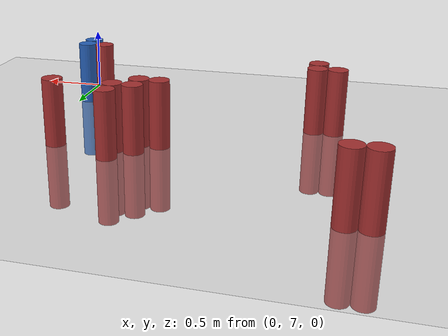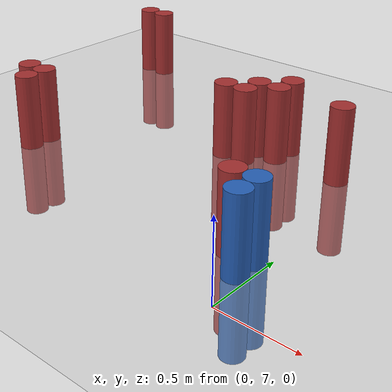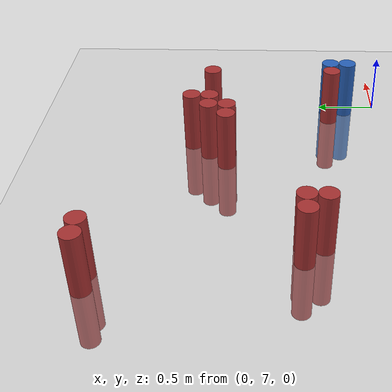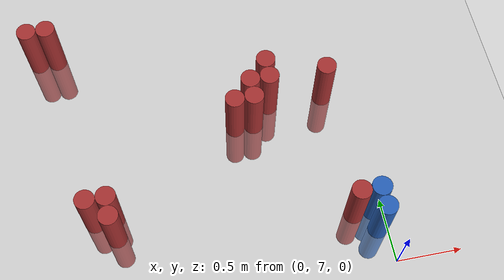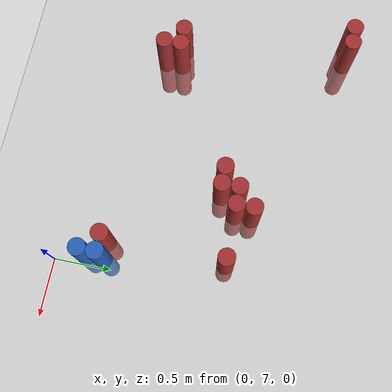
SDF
<sdf version="1.6">
 <world name="default">
  <model name="ground_plane">
   <static>1</static>
   <link name="link">
    <collision name="collision">
     <geometry><plane><normal>0 0 1</normal><size>100 100</size></plane></geometry>
     <surface><friction><ode><mu>100</mu><mu2>50</mu2></ode></friction></surface>
    </collision>
    <visual name="visual">
     <cast_shadows>0</cast_shadows>
     <geometry><plane><normal>0 0 1</normal><size>100 100</size></plane></geometry>
     <material>
      <script><uri>file://media/materials/scripts/gazebo.material</uri><name>Gazebo/Grey</name></script>
     </material>
    </visual>
   </link>
  </model>
  <model name="unit_cylinder_155">
   <static>1</static>
   <pose>-2.475000 9.225000 0.000000 0.000000 0.000000 0.000000</pose>
   <link name="link">
    <inertial>
     <mass>1</mass>
     <inertia><ixx>0.145833</ixx><ixy>0</ixy><ixz>0</ixz><iyy>0.145833</iyy><iyz>0</iyz><izz>0.125</izz></inertia>
    </inertial>
    <collision name="collision">
     <geometry><cylinder><radius>0.075000</radius><length>1</length></cylinder></geometry>
    </collision>
    <visual name="visual">
     <geometry><cylinder><radius>0.075000</radius><length>1</length></cylinder></geometry>
     <material>
      <ambient>0.648000 0.192000 0.192000 1</ambient>
      <diffuse>0.648000 0.192000 0.192000 1</diffuse>
     </material>
     <material>
      <script><name>Gazebo/Grey</name><uri>file://media/materials/scripts/gazebo.material</uri></script>
     </material>
    </visual>
   </link>
  </model>
  <model name="unit_cylinder_157">
   <static>1</static>
   <pose>-2.325000 9.225000 0.000000 0.000000 0.000000 0.000000</pose>
   <link name="link">
    <inertial>
     <mass>1</mass>
     <inertia><ixx>0.145833</ixx><ixy>0</ixy><ixz>0</ixz><iyy>0.145833</iyy><iyz>0</iyz><izz>0.125</izz></inertia>
    </inertial>
    <collision name="collision">
     <geometry><cylinder><radius>0.075000</radius><length>1</length></cylinder></geometry>
    </collision>
    <visual name="visual">
     <geometry><cylinder><radius>0.075000</radius><length>1</length></cylinder></geometry>
     <material>
      <ambient>0.648000 0.192000 0.192000 1</ambient>
      <diffuse>0.648000 0.192000 0.192000 1</diffuse>
     </material>
     <material>
      <script><name>Gazebo/Grey</name><uri>file://media/materials/scripts/gazebo.material</uri></script>
     </material>
    </visual>
   </link>
  </model>
  <model name="unit_cylinder_160">
   <static>1</static>
   <pose>-2.175000 7.725000 0.000000 0.000000 0.000000 0.000000</pose>
   <link name="link">
    <inertial>
     <mass>1</mass>
     <inertia><ixx>0.145833</ixx><ixy>0</ixy><ixz>0</ixz><iyy>0.145833</iyy><iyz>0</iyz><izz>0.125</izz></inertia>
    </inertial>
    <collision name="collision">
     <geometry><cylinder><radius>0.075000</radius><length>1</length></cylinder></geometry>
    </collision>
    <visual name="visual">
     <geometry><cylinder><radius>0.075000</radius><length>1</length></cylinder></geometry>
     <material>
      <ambient>0.648000 0.192000 0.192000 1</ambient>
      <diffuse>0.648000 0.192000 0.192000 1</diffuse>
     </material>
     <material>
      <script><name>Gazebo/Grey</name><uri>file://media/materials/scripts/gazebo.material</uri></script>
     </material>
    </visual>
   </link>
  </model>
  <model name="unit_cylinder_165">
   <static>1</static>
   <pose>-2.025000 7.575000 0.000000 0.000000 0.000000 0.000000</pose>
   <link name="link">
    <inertial>
     <mass>1</mass>
     <inertia><ixx>0.145833</ixx><ixy>0</ixy><ixz>0</ixz><iyy>0.145833</iyy><iyz>0</iyz><izz>0.125</izz></inertia>
    </inertial>
    <collision name="collision">
     <geometry><cylinder><radius>0.075000</radius><length>1</length></cylinder></geometry>
    </collision>
    <visual name="visual">
     <geometry><cylinder><radius>0.075000</radius><length>1</length></cylinder></geometry>
     <material>
      <ambient>0.648000 0.192000 0.192000 1</ambient>
      <diffuse>0.648000 0.192000 0.192000 1</diffuse>
     </material>
     <material>
      <script><name>Gazebo/Grey</name><uri>file://media/materials/scripts/gazebo.material</uri></script>
     </material>
    </visual>
   </link>
  </model>
  <model name="unit_cylinder_166">
   <static>1</static>
   <pose>-2.025000 7.725000 0.000000 0.000000 0.000000 0.000000</pose>
   <link name="link">
    <inertial>
     <mass>1</mass>
     <inertia><ixx>0.145833</ixx><ixy>0</ixy><ixz>0</ixz><iyy>0.145833</iyy><iyz>0</iyz><izz>0.125</izz></inertia>
    </inertial>
    <collision name="collision">
     <geometry><cylinder><radius>0.075000</radius><length>1</length></cylinder></geometry>
    </collision>
    <visual name="visual">
     <geometry><cylinder><radius>0.075000</radius><length>1</length></cylinder></geometry>
     <material>
      <ambient>0.648000 0.192000 0.192000 1</ambient>
      <diffuse>0.648000 0.192000 0.192000 1</diffuse>
     </material>
     <material>
      <script><name>Gazebo/Grey</name><uri>file://media/materials/scripts/gazebo.material</uri></script>
     </material>
    </visual>
   </link>
  </model>
  <model name="unit_cylinder_173">
   <static>1</static>
   <pose>-0.975000 8.325000 0.000000 0.000000 0.000000 0.000000</pose>
   <link name="link">
    <inertial>
     <mass>1</mass>
     <inertia><ixx>0.145833</ixx><ixy>0</ixy><ixz>0</ixz><iyy>0.145833</iyy><iyz>0</iyz><izz>0.125</izz></inertia>
    </inertial>
    <collision name="collision">
     <geometry><cylinder><radius>0.075000</radius><length>1</length></cylinder></geometry>
    </collision>
    <visual name="visual">
     <geometry><cylinder><radius>0.075000</radius><length>1</length></cylinder></geometry>
     <material>
      <ambient>0.648000 0.192000 0.192000 1</ambient>
      <diffuse>0.648000 0.192000 0.192000 1</diffuse>
     </material>
     <material>
      <script><name>Gazebo/Grey</name><uri>file://media/materials/scripts/gazebo.material</uri></script>
     </material>
    </visual>
   </link>
  </model>
  <model name="unit_cylinder_174">
   <static>1</static>
   <pose>-0.825000 8.325000 0.000000 0.000000 0.000000 0.000000</pose>
   <link name="link">
    <inertial>
     <mass>1</mass>
     <inertia><ixx>0.145833</ixx><ixy>0</ixy><ixz>0</ixz><iyy>0.145833</iyy><iyz>0</iyz><izz>0.125</izz></inertia>
    </inertial>
    <collision name="collision">
     <geometry><cylinder><radius>0.075000</radius><length>1</length></cylinder></geometry>
    </collision>
    <visual name="visual">
     <geometry><cylinder><radius>0.075000</radius><length>1</length></cylinder></geometry>
     <material>
      <ambient>0.648000 0.192000 0.192000 1</ambient>
      <diffuse>0.648000 0.192000 0.192000 1</diffuse>
     </material>
     <material>
      <script><name>Gazebo/Grey</name><uri>file://media/materials/scripts/gazebo.material</uri></script>
     </material>
    </visual>
   </link>
  </model>
  <model name="unit_cylinder_175">
   <static>1</static>
   <pose>-0.825000 8.475000 0.000000 0.000000 0.000000 0.000000</pose>
   <link name="link">
    <inertial>
     <mass>1</mass>
     <inertia><ixx>0.145833</ixx><ixy>0</ixy><ixz>0</ixz><iyy>0.145833</iyy><iyz>0</iyz><izz>0.125</izz></inertia>
    </inertial>
    <collision name="collision">
     <geometry><cylinder><radius>0.075000</radius><length>1</length></cylinder></geometry>
    </collision>
    <visual name="visual">
     <geometry><cylinder><radius>0.075000</radius><length>1</length></cylinder></geometry>
     <material>
      <ambient>0.648000 0.192000 0.192000 1</ambient>
      <diffuse>0.648000 0.192000 0.192000 1</diffuse>
     </material>
     <material>
      <script><name>Gazebo/Grey</name><uri>file://media/materials/scripts/gazebo.material</uri></script>
     </material>
    </visual>
   </link>
  </model>
  <model name="unit_cylinder_176">
   <static>1</static>
   <pose>-0.675000 8.475000 0.000000 0.000000 0.000000 0.000000</pose>
   <link name="link">
    <inertial>
     <mass>1</mass>
     <inertia><ixx>0.145833</ixx><ixy>0</ixy><ixz>0</ixz><iyy>0.145833</iyy><iyz>0</iyz><izz>0.125</izz></inertia>
    </inertial>
    <collision name="collision">
     <geometry><cylinder><radius>0.075000</radius><length>1</length></cylinder></geometry>
    </collision>
    <visual name="visual">
     <geometry><cylinder><radius>0.075000</radius><length>1</length></cylinder></geometry>
     <material>
      <ambient>0.648000 0.192000 0.192000 1</ambient>
      <diffuse>0.648000 0.192000 0.192000 1</diffuse>
     </material>
     <material>
      <script><name>Gazebo/Grey</name><uri>file://media/materials/scripts/gazebo.material</uri></script>
     </material>
    </visual>
   </link>
  </model>
  <model name="unit_cylinder_177">
   <static>1</static>
   <pose>-0.675000 8.625000 0.000000 0.000000 0.000000 0.000000</pose>
   <link name="link">
    <inertial>
     <mass>1</mass>
     <inertia><ixx>0.145833</ixx><ixy>0</ixy><ixz>0</ixz><iyy>0.145833</iyy><iyz>0</iyz><izz>0.125</izz></inertia>
    </inertial>
    <collision name="collision">
     <geometry><cylinder><radius>0.075000</radius><length>1</length></cylinder></geometry>
    </collision>
    <visual name="visual">
     <geometry><cylinder><radius>0.075000</radius><length>1</length></cylinder></geometry>
     <material>
      <ambient>0.648000 0.192000 0.192000 1</ambient>
      <diffuse>0.648000 0.192000 0.192000 1</diffuse>
     </material>
     <material>
      <script><name>Gazebo/Grey</name><uri>file://media/materials/scripts/gazebo.material</uri></script>
     </material>
    </visual>
   </link>
  </model>
  <model name="unit_cylinder_185">
   <static>1</static>
   <pose>-0.225000 7.425000 0.000000 0.000000 0.000000 0.000000</pose>
   <link name="link">
    <inertial>
     <mass>1</mass>
     <inertia><ixx>0.145833</ixx><ixy>0</ixy><ixz>0</ixz><iyy>0.145833</iyy><iyz>0</iyz><izz>0.125</izz></inertia>
    </inertial>
    <collision name="collision">
     <geometry><cylinder><radius>0.075000</radius><length>1</length></cylinder></geometry>
    </collision>
    <visual name="visual">
     <geometry><cylinder><radius>0.075000</radius><length>1</length></cylinder></geometry>
     <material>
      <ambient>0.648000 0.192000 0.192000 1</ambient>
      <diffuse>0.648000 0.192000 0.192000 1</diffuse>
     </material>
     <material>
      <script><name>Gazebo/Grey</name><uri>file://media/materials/scripts/gazebo.material</uri></script>
     </material>
    </visual>
   </link>
  </model>
  <model name="unit_cylinder_186">
   <static>1</static>
   <pose>-0.225000 8.475000 0.000000 0.000000 0.000000 0.000000</pose>
   <link name="link">
    <inertial>
     <mass>1</mass>
     <inertia><ixx>0.145833</ixx><ixy>0</ixy><ixz>0</ixz><iyy>0.145833</iyy><iyz>0</iyz><izz>0.125</izz></inertia>
    </inertial>
    <collision name="collision">
     <geometry><cylinder><radius>0.075000</radius><length>1</length></cylinder></geometry>
    </collision>
    <visual name="visual">
     <geometry><cylinder><radius>0.075000</radius><length>1</length></cylinder></geometry>
     <material>
      <ambient>0.648000 0.192000 0.192000 1</ambient>
      <diffuse>0.648000 0.192000 0.192000 1</diffuse>
     </material>
     <material>
      <script><name>Gazebo/Grey</name><uri>file://media/materials/scripts/gazebo.material</uri></script>
     </material>
    </visual>
   </link>
  </model>
  <model name="unit_cylinder_201">
   <static>1</static>
   <pose>-0.075000 7.275000 0.000000 0.000000 0.000000 0.000000</pose>
   <link name="link">
    <inertial>
     <mass>1</mass>
     <inertia><ixx>0.145833</ixx><ixy>0</ixy><ixz>0</ixz><iyy>0.145833</iyy><iyz>0</iyz><izz>0.125</izz></inertia>
    </inertial>
    <collision name="collision">
     <geometry><cylinder><radius>0.075000</radius><length>1</length></cylinder></geometry>
    </collision>
    <visual name="visual">
     <geometry><cylinder><radius>0.075000</radius><length>1</length></cylinder></geometry>
     <material>
      <ambient>0.152000 0.379000 0.720000 1</ambient>
      <diffuse>0.152000 0.379000 0.720000 1</diffuse>
     </material>
     <material>
      <script><name>Gazebo/Grey</name><uri>file://media/materials/scripts/gazebo.material</uri></script>
     </material>
    </visual>
   </link>
  </model>
  <model name="unit_cylinder_202">
   <static>1</static>
   <pose>-0.075000 7.425000 0.000000 0.000000 0.000000 0.000000</pose>
   <link name="link">
    <inertial>
     <mass>1</mass>
     <inertia><ixx>0.145833</ixx><ixy>0</ixy><ixz>0</ixz><iyy>0.145833</iyy><iyz>0</iyz><izz>0.125</izz></inertia>
    </inertial>
    <collision name="collision">
     <geometry><cylinder><radius>0.075000</radius><length>1</length></cylinder></geometry>
    </collision>
    <visual name="visual">
     <geometry><cylinder><radius>0.075000</radius><length>1</length></cylinder></geometry>
     <material>
      <ambient>0.152000 0.379000 0.720000 1</ambient>
      <diffuse>0.152000 0.379000 0.720000 1</diffuse>
     </material>
     <material>
      <script><name>Gazebo/Grey</name><uri>file://media/materials/scripts/gazebo.material</uri></script>
     </material>
    </visual>
   </link>
  </model>
 </world>
</sdf>
